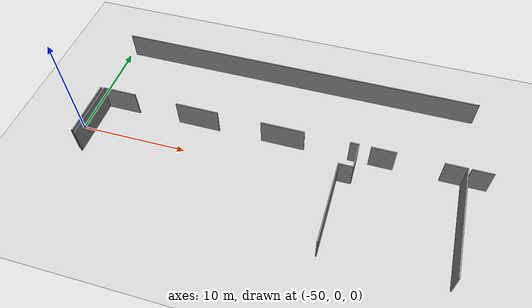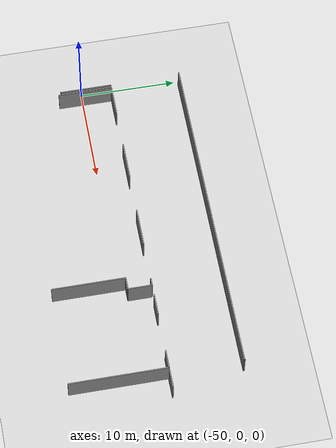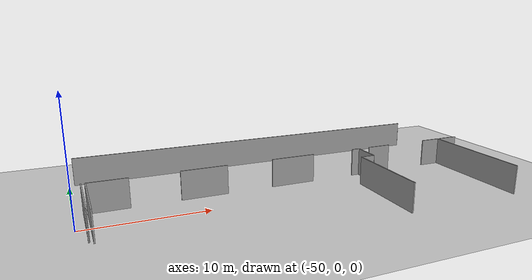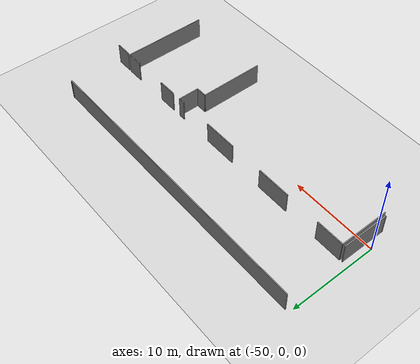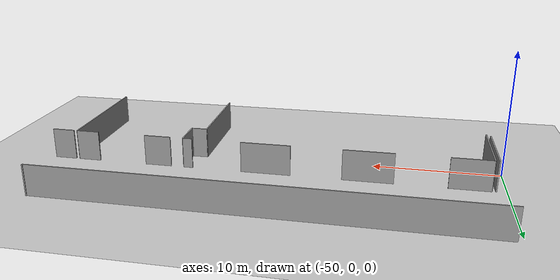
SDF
<sdf version="1.6">
 <world name="default">
  <model name="ground_plane">
   <static>1</static>
   <link name="link">
    <collision name="collision">
     <geometry><plane><normal>0 0 1</normal><size>100 100</size></plane></geometry>
     <surface><friction><ode><mu>100</mu><mu2>50</mu2></ode></friction></surface>
    </collision>
    <visual name="visual">
     <cast_shadows>0</cast_shadows>
     <geometry><plane><normal>0 0 1</normal><size>100 100</size></plane></geometry>
     <material>
      <script><uri>file://media/materials/scripts/gazebo.material</uri><name>Gazebo/Grey</name></script>
     </material>
    </visual>
   </link>
  </model>
  <model name="50057025">
   <static>1</static>
   <link name="Wall_7">
    <collision name="Wall_7_Collision">
     <geometry><box><size>5.34098695785 0.1 2.5</size></box></geometry>
     <pose>2.67049347892 0 1.25 0 0 0</pose>
    </collision>
    <visual name="Wall_7_Visual">
     <pose>2.67049347892 0 1.25 0 0 0</pose>
     <geometry><box><size>5.34098695785 0.1 2.5</size></box></geometry>
     <material>
      <script><uri>file://media/materials/scripts/gazebo.material</uri><name>Gazebo/Grey</name></script>
      <ambient>1 1 1 1</ambient>
     </material>
    </visual>
    <pose>6.53792128605 -17.7494594797 0 0 0 -1.57079632679</pose>
   </link>
   <link name="Wall_8">
    <collision name="Wall_8_Collision">
     <geometry><box><size>0.0718160596922 0.1 2.5</size></box></geometry>
     <pose>0.0359080298461 0 1.25 0 0 0</pose>
    </collision>
    <visual name="Wall_8_Visual">
     <pose>0.0359080298461 0 1.25 0 0 0</pose>
     <geometry><box><size>0.0718160596922 0.1 2.5</size></box></geometry>
     <material>
      <script><uri>file://media/materials/scripts/gazebo.material</uri><name>Gazebo/Grey</name></script>
      <ambient>1 1 1 1</ambient>
     </material>
    </visual>
    <pose>6.53792128605 -23.0904464375 0 0 0 3.14159265359</pose>
   </link>
   <link name="Wall_14">
    <collision name="Wall_14_Collision">
     <geometry><box><size>5.620018315 0.1 2.5</size></box></geometry>
     <pose>2.8100091575 0 1.25 0 0 0</pose>
    </collision>
    <visual name="Wall_14_Visual">
     <pose>2.8100091575 0 1.25 0 0 0</pose>
     <geometry><box><size>5.620018315 0.1 2.5</size></box></geometry>
     <material>
      <script><uri>file://media/materials/scripts/gazebo.material</uri><name>Gazebo/Grey</name></script>
      <ambient>1 1 1 1</ambient>
     </material>
    </visual>
    <pose>6.85279734319 -23.3775840166 0 0 0 1.57079632679</pose>
   </link>
   <link name="Wall_15">
    <collision name="Wall_15_Collision">
     <geometry><box><size>3.17890558405 0.1 2.5</size></box></geometry>
     <pose>1.58945279202 0 1.25 0 0 0</pose>
    </collision>
    <visual name="Wall_15_Visual">
     <pose>1.58945279202 0 1.25 0 0 0</pose>
     <geometry><box><size>3.17890558405 0.1 2.5</size></box></geometry>
     <material>
      <script><uri>file://media/materials/scripts/gazebo.material</uri><name>Gazebo/Grey</name></script>
      <ambient>1 1 1 1</ambient>
     </material>
    </visual>
    <pose>6.85279734319 -17.7575657016 0 0 0 0.0</pose>
   </link>
   <link name="Wall_16">
    <collision name="Wall_16_Collision">
     <geometry><box><size>3.99370754525 0.1 2.5</size></box></geometry>
     <pose>1.99685377262 0 1.25 0 0 0</pose>
    </collision>
    <visual name="Wall_16_Visual">
     <pose>1.99685377262 0 1.25 0 0 0</pose>
     <geometry><box><size>3.99370754525 0.1 2.5</size></box></geometry>
     <material>
      <script><uri>file://media/materials/scripts/gazebo.material</uri><name>Gazebo/Grey</name></script>
      <ambient>1 1 1 1</ambient>
     </material>
    </visual>
    <pose>14.0734145053 -17.7575657016 0 0 0 0.0</pose>
   </link>
   <link name="Wall_17">
    <collision name="Wall_17_Collision">
     <geometry><box><size>4.01283316255 0.1 2.5</size></box></geometry>
     <pose>2.00641658128 0 1.25 0 0 0</pose>
    </collision>
    <visual name="Wall_17_Visual">
     <pose>2.00641658128 0 1.25 0 0 0</pose>
     <geometry><box><size>4.01283316255 0.1 2.5</size></box></geometry>
     <material>
      <script><uri>file://media/materials/scripts/gazebo.material</uri><name>Gazebo/Grey</name></script>
      <ambient>1 1 1 1</ambient>
     </material>
    </visual>
    <pose>22.1183331075 -17.7575657016 0 0 0 0.0</pose>
   </link>
   <link name="Wall_18">
    <collision name="Wall_18_Collision">
     <geometry><box><size>0.756665150972 0.1 2.5</size></box></geometry>
     <pose>0.378332575486 0 1.25 0 0 0</pose>
    </collision>
    <visual name="Wall_18_Visual">
     <pose>0.378332575486 0 1.25 0 0 0</pose>
     <geometry><box><size>0.756665150972 0.1 2.5</size></box></geometry>
     <material>
      <script><uri>file://media/materials/scripts/gazebo.material</uri><name>Gazebo/Grey</name></script>
      <ambient>1 1 1 1</ambient>
     </material>
    </visual>
    <pose>30.1536255711 -17.7575657016 0 0 0 0.0</pose>
   </link>
   <link name="Wall_19">
    <collision name="Wall_19_Collision">
     <geometry><box><size>2.44503918218 0.1 2.5</size></box></geometry>
     <pose>1.22251959109 0 1.25 0 0 0</pose>
    </collision>
    <visual name="Wall_19_Visual">
     <pose>1.22251959109 0 1.25 0 0 0</pose>
     <geometry><box><size>2.44503918218 0.1 2.5</size></box></geometry>
     <material>
      <script><uri>file://media/materials/scripts/gazebo.material</uri><name>Gazebo/Grey</name></script>
      <ambient>1 1 1 1</ambient>
     </material>
    </visual>
    <pose>30.910290722 -17.7575657016 0 0 0 -1.57079632679</pose>
   </link>
   <link name="Wall_20">
    <collision name="Wall_20_Collision">
     <geometry><box><size>1.27191688083 0.1 2.5</size></box></geometry>
     <pose>0.635958440414 0 1.25 0 0 0</pose>
    </collision>
    <visual name="Wall_20_Visual">
     <pose>0.635958440414 0 1.25 0 0 0</pose>
     <geometry><box><size>1.27191688083 0.1 2.5</size></box></geometry>
     <material>
      <script><uri>file://media/materials/scripts/gazebo.material</uri><name>Gazebo/Grey</name></script>
      <ambient>1 1 1 1</ambient>
     </material>
    </visual>
    <pose>30.910290722 -20.2026048837 0 0 0 3.14159265359</pose>
   </link>
   <link name="Wall_21">
    <collision name="Wall_21_Collision">
     <geometry><box><size>7.4895157419 0.1 2.5</size></box></geometry>
     <pose>3.74475787095 0 1.25 0 0 0</pose>
    </collision>
    <visual name="Wall_21_Visual">
     <pose>3.74475787095 0 1.25 0 0 0</pose>
     <geometry><box><size>7.4895157419 0.1 2.5</size></box></geometry>
     <material>
      <script><uri>file://media/materials/scripts/gazebo.material</uri><name>Gazebo/Grey</name></script>
      <ambient>1 1 1 1</ambient>
     </material>
    </visual>
    <pose>29.6383738412 -20.2026048837 0 0 0 -1.57079632679</pose>
   </link>
   <link name="Wall_31">
    <collision name="Wall_31_Collision">
     <geometry><box><size>2.20894546919 0.1 2.5</size></box></geometry>
     <pose>1.1044727346 0 1.25 0 0 0</pose>
    </collision>
    <visual name="Wall_31_Visual">
     <pose>1.1044727346 0 1.25 0 0 0</pose>
     <geometry><box><size>2.20894546919 0.1 2.5</size></box></geometry>
     <material>
      <script><uri>file://media/materials/scripts/gazebo.material</uri><name>Gazebo/Grey</name></script>
      <ambient>1 1 1 1</ambient>
     </material>
    </visual>
    <pose>31.9786654372 -17.7557924655 0 0 0 0.0</pose>
   </link>
   <link name="Wall_32">
    <collision name="Wall_32_Collision">
     <geometry><box><size>1.89444939121 0.1 2.5</size></box></geometry>
     <pose>0.947224695605 0 1.25 0 0 0</pose>
    </collision>
    <visual name="Wall_32_Visual">
     <pose>0.947224695605 0 1.25 0 0 0</pose>
     <geometry><box><size>1.89444939121 0.1 2.5</size></box></geometry>
     <material>
      <script><uri>file://media/materials/scripts/gazebo.material</uri><name>Gazebo/Grey</name></script>
      <ambient>1 1 1 1</ambient>
     </material>
    </visual>
    <pose>38.207157034 -17.7557924655 0 0 0 0.0</pose>
   </link>
   <link name="Wall_33">
    <collision name="Wall_33_Collision">
     <geometry><box><size>9.94734755553 0.1 2.5</size></box></geometry>
     <pose>4.97367377777 0 1.25 0 0 0</pose>
    </collision>
    <visual name="Wall_33_Visual">
     <pose>4.97367377777 0 1.25 0 0 0</pose>
     <geometry><box><size>9.94734755553 0.1 2.5</size></box></geometry>
     <material>
      <script><uri>file://media/materials/scripts/gazebo.material</uri><name>Gazebo/Grey</name></script>
      <ambient>1 1 1 1</ambient>
     </material>
    </visual>
    <pose>40.1016064252 -17.7557924655 0 0 0 -1.57079632679</pose>
   </link>
   <link name="Wall_37">
    <collision name="Wall_37_Collision">
     <geometry><box><size>1.85721143433 0.1 2.5</size></box></geometry>
     <pose>0.928605717166 0 1.25 0 0 0</pose>
    </collision>
    <visual name="Wall_37_Visual">
     <pose>0.928605717166 0 1.25 0 0 0</pose>
     <geometry><box><size>1.85721143433 0.1 2.5</size></box></geometry>
     <material>
      <script><uri>file://media/materials/scripts/gazebo.material</uri><name>Gazebo/Grey</name></script>
      <ambient>1 1 1 1</ambient>
     </material>
    </visual>
    <pose>40.3863374696 -17.7604788751 0 0 0 0.0</pose>
   </link>
   <link name="Wall_318">
    <collision name="Wall_318_Collision">
     <geometry><box><size>0.0905616978482 0.1 2.5</size></box></geometry>
     <pose>0.0452808489241 0 1.25 0 0 0</pose>
    </collision>
    <visual name="Wall_318_Visual">
     <pose>0.0452808489241 0 1.25 0 0 0</pose>
     <geometry><box><size>0.0905616978482 0.1 2.5</size></box></geometry>
     <material>
      <script><uri>file://media/materials/scripts/gazebo.material</uri><name>Gazebo/Grey</name></script>
      <ambient>1 1 1 1</ambient>
     </material>
    </visual>
    <pose>40.5531483173 -10.3097210066 0 0 0 -1.57079632679</pose>
   </link>
   <link name="Wall_319">
    <collision name="Wall_319_Collision">
     <geometry><box><size>34.3412491435 0.1 2.5</size></box></geometry>
     <pose>17.1706245717 0 1.25 0 0 0</pose>
    </collision>
    <visual name="Wall_319_Visual">
     <pose>17.1706245717 0 1.25 0 0 0</pose>
     <geometry><box><size>34.3412491435 0.1 2.5</size></box></geometry>
     <material>
      <script><uri>file://media/materials/scripts/gazebo.material</uri><name>Gazebo/Grey</name></script>
      <ambient>1 1 1 1</ambient>
     </material>
    </visual>
    <pose>40.5531483173 -10.4002827045 0 0 0 3.14159265359</pose>
   </link>
   <pose>-55.75 20.8575555688 0 0 0 0</pose>
  </model>
 </world>
</sdf>
